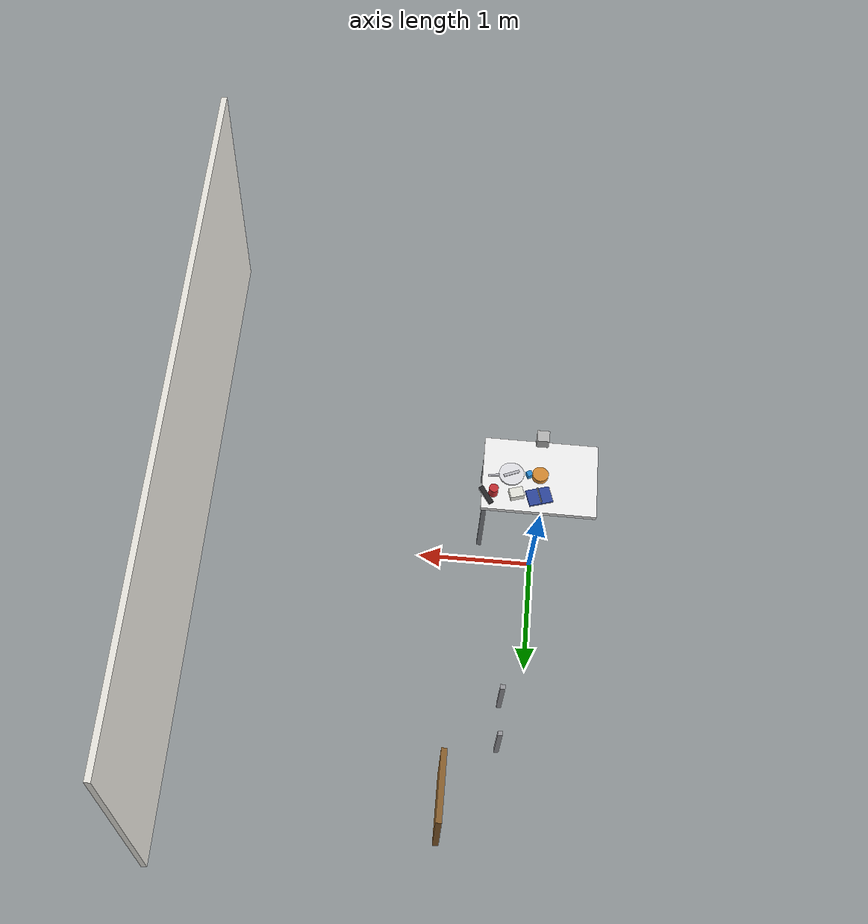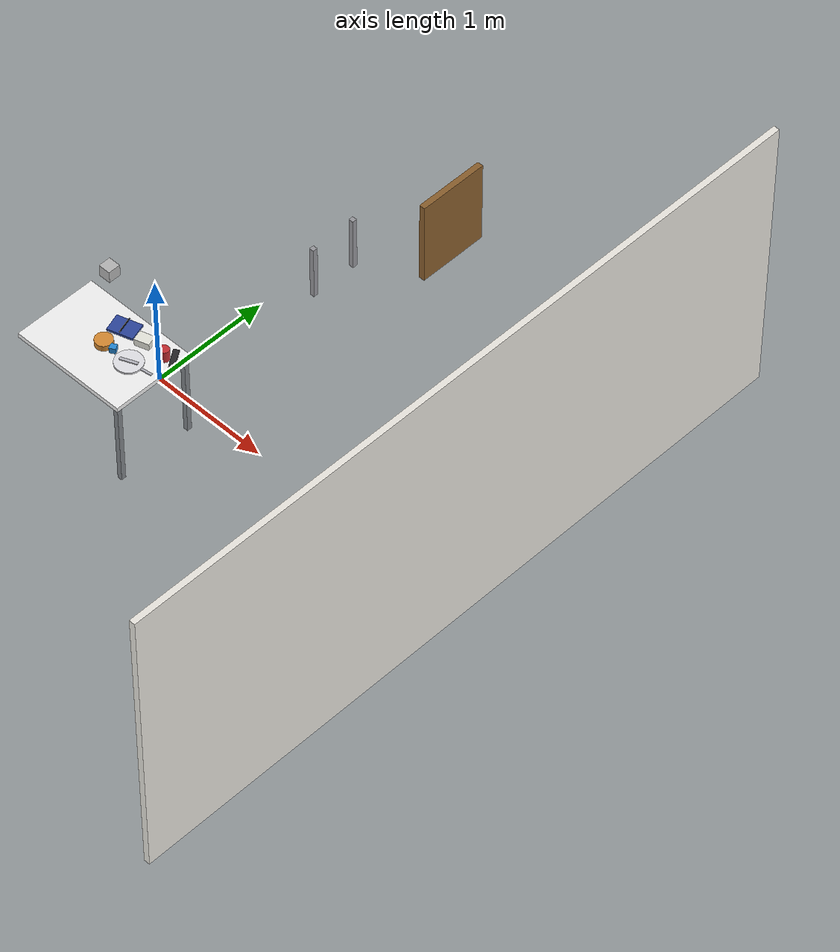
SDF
<sdf version="1.10">
 <world name="bps_room">
  <model name="wall_east">
   <static>true</static>
   <pose>3 0 1.25 0 0 0</pose>
   <link name="link">
    <collision name="collision"><geometry><box><size>0.05 6 2.5</size></box></geometry></collision>
    <visual name="visual">
     <geometry><box><size>0.05 6 2.5</size></box></geometry>
     <material><ambient>0.93 0.92 0.89 1</ambient><diffuse>0.93 0.92 0.89 1</diffuse></material>
    </visual>
   </link>
  </model>
  <model name="desk_leg_right">
   <static>true</static>
   <pose>0.65 2.3 0.375 0 0 0</pose>
   <link name="link">
    <collision name="collision"><geometry><box><size>0.05 0.6 0.75</size></box></geometry></collision>
    <visual name="visual">
     <geometry><box><size>0.05 0.6 0.75</size></box></geometry>
     <material><ambient>0.55 0.38 0.18 1</ambient><diffuse>0.55 0.38 0.18 1</diffuse></material>
    </visual>
   </link>
  </model>
  <model name="chair_leg_fr">
   <static>true</static>
   <pose>0.2 1.35 0.24 0 0 0</pose>
   <link name="link">
    <collision name="collision"><geometry><box><size>0.04 0.04 0.48</size></box></geometry></collision>
    <visual name="visual">
     <geometry><box><size>0.04 0.04 0.48</size></box></geometry>
     <material><ambient>0.60 0.60 0.62 1</ambient><diffuse>0.60 0.60 0.62 1</diffuse></material>
    </visual>
   </link>
  </model>
  <model name="chair_leg_br">
   <static>true</static>
   <pose>0.2 1.75 0.24 0 0 0</pose>
   <link name="link">
    <collision name="collision"><geometry><box><size>0.04 0.04 0.48</size></box></geometry></collision>
    <visual name="visual">
     <geometry><box><size>0.04 0.04 0.48</size></box></geometry>
     <material><ambient>0.60 0.60 0.62 1</ambient><diffuse>0.60 0.60 0.62 1</diffuse></material>
    </visual>
   </link>
  </model>
  <model name="experiment_table">
   <static>true</static>
   <pose>0 -0.5 0.75 0 0 0</pose>
   <link name="link">
    <collision name="collision"><geometry><box><size>1.0 0.7 0.04</size></box></geometry></collision>
    <visual name="visual">
     <geometry><box><size>1.0 0.7 0.04</size></box></geometry>
     <material><ambient>0.96 0.96 0.96 1</ambient><diffuse>0.96 0.96 0.96 1</diffuse></material>
    </visual>
   </link>
  </model>
  <model name="table_leg_fr">
   <static>true</static>
   <pose>0.47 -0.82 0.375 0 0 0</pose>
   <link name="link">
    <collision name="collision"><geometry><box><size>0.04 0.04 0.75</size></box></geometry></collision>
    <visual name="visual">
     <geometry><box><size>0.04 0.04 0.75</size></box></geometry>
     <material><ambient>0.50 0.52 0.54 1</ambient><diffuse>0.50 0.52 0.54 1</diffuse></material>
    </visual>
   </link>
  </model>
  <model name="table_leg_br">
   <static>true</static>
   <pose>0.47 -0.18 0.375 0 0 0</pose>
   <link name="link">
    <collision name="collision"><geometry><box><size>0.04 0.04 0.75</size></box></geometry></collision>
    <visual name="visual">
     <geometry><box><size>0.04 0.04 0.75</size></box></geometry>
     <material><ambient>0.50 0.52 0.54 1</ambient><diffuse>0.50 0.52 0.54 1</diffuse></material>
    </visual>
   </link>
  </model>
  <model name="obj_notebook">
   <static>true</static>
   <pose>0.00 -0.30 0.78 0 0 0.3</pose>
   <link name="link">
    <collision name="collision"><geometry><box><size>0.21 0.15 0.02</size></box></geometry></collision>
    <visual name="visual">
     <geometry><box><size>0.21 0.15 0.02</size></box></geometry>
     <material>
      <ambient>0.18 0.28 0.62 1</ambient>
      <diffuse>0.18 0.28 0.62 1</diffuse>
      <specular>0.2 0.2 0.2 1</specular>
     </material>
     <plugin filename="gz-sim-label-system" name="gz::sim::systems::Label"><label>3</label></plugin>
    </visual>
   </link>
  </model>
  <model name="obj_pen">
   <static>true</static>
   <pose>0.00 -0.30 0.807 1.5708 0 0.3</pose>
   <link name="link">
    <collision name="collision">
     <geometry><cylinder><radius>0.006</radius><length>0.14</length></cylinder></geometry>
    </collision>
    <visual name="visual">
     <geometry><cylinder><radius>0.006</radius><length>0.14</length></cylinder></geometry>
     <material>
      <ambient>0.05 0.05 0.05 1</ambient>
      <diffuse>0.05 0.05 0.05 1</diffuse>
      <specular>0.6 0.6 0.6 1</specular>
     </material>
     <plugin filename="gz-sim-label-system" name="gz::sim::systems::Label"><label>4</label></plugin>
    </visual>
   </link>
  </model>
  <model name="obj_tissue_box">
   <static>true</static>
   <pose>0.20 -0.30 0.80 0 0 0.3</pose>
   <link name="link">
    <collision name="collision"><geometry><box><size>0.12 0.09 0.06</size></box></geometry></collision>
    <visual name="visual">
     <geometry><box><size>0.12 0.09 0.06</size></box></geometry>
     <material>
      <ambient>0.92 0.92 0.88 1</ambient>
      <diffuse>0.92 0.92 0.88 1</diffuse>
      <specular>0.2 0.2 0.2 1</specular>
     </material>
     <plugin filename="gz-sim-label-system" name="gz::sim::systems::Label"><label>5</label></plugin>
    </visual>
   </link>
  </model>
  <model name="obj_mug">
   <static>true</static>
   <pose>0.40 -0.30 0.82 0 0 0</pose>
   <link name="link">
    <collision name="collision">
     <geometry><cylinder><radius>0.04</radius><length>0.10</length></cylinder></geometry>
    </collision>
    <visual name="visual">
     <geometry><cylinder><radius>0.04</radius><length>0.10</length></cylinder></geometry>
     <material>
      <ambient>0.78 0.18 0.20 1</ambient>
      <diffuse>0.78 0.18 0.20 1</diffuse>
      <specular>0.3 0.3 0.3 1</specular>
     </material>
     <plugin filename="gz-sim-label-system" name="gz::sim::systems::Label"><label>6</label></plugin>
    </visual>
   </link>
  </model>
  <model name="obj_remote">
   <static>true</static>
   <pose>0.46 -0.27 0.78 0 0 0.6</pose>
   <link name="link">
    <collision name="collision"><geometry><box><size>0.045 0.18 0.02</size></box></geometry></collision>
    <visual name="visual">
     <geometry><box><size>0.045 0.18 0.02</size></box></geometry>
     <material>
      <ambient>0.15 0.15 0.16 1</ambient>
      <diffuse>0.15 0.15 0.16 1</diffuse>
      <specular>0.2 0.2 0.2 1</specular>
     </material>
     <plugin filename="gz-sim-label-system" name="gz::sim::systems::Label"><label>7</label></plugin>
    </visual>
   </link>
  </model>
  <model name="obj_bowl">
   <static>true</static>
   <pose>0.00 -0.50 0.795 0 0 0</pose>
   <link name="link">
    <collision name="collision">
     <geometry><cylinder><radius>0.07</radius><length>0.05</length></cylinder></geometry>
    </collision>
    <visual name="visual">
     <geometry><cylinder><radius>0.07</radius><length>0.05</length></cylinder></geometry>
     <material>
      <ambient>0.85 0.55 0.20 1</ambient>
      <diffuse>0.85 0.55 0.20 1</diffuse>
      <specular>0.3 0.3 0.3 1</specular>
     </material>
     <plugin filename="gz-sim-label-system" name="gz::sim::systems::Label"><label>10</label></plugin>
    </visual>
   </link>
  </model>
  <model name="obj_toy_block">
   <static>true</static>
   <pose>0.095 -0.50 0.795 0 0 0.5</pose>
   <link name="link">
    <collision name="collision"><geometry><box><size>0.05 0.05 0.05</size></box></geometry></collision>
    <visual name="visual">
     <geometry><box><size>0.05 0.05 0.05</size></box></geometry>
     <material>
      <ambient>0.15 0.55 0.85 1</ambient>
      <diffuse>0.15 0.55 0.85 1</diffuse>
      <specular>0.3 0.3 0.3 1</specular>
     </material>
     <plugin filename="gz-sim-label-system" name="gz::sim::systems::Label"><label>11</label></plugin>
    </visual>
   </link>
  </model>
  <model name="obj_plate">
   <static>true</static>
   <pose>0.25 -0.50 0.7775 0 0 0</pose>
   <link name="link">
    <collision name="collision">
     <geometry><cylinder><radius>0.11</radius><length>0.015</length></cylinder></geometry>
    </collision>
    <visual name="visual">
     <geometry><cylinder><radius>0.11</radius><length>0.015</length></cylinder></geometry>
     <material>
      <ambient>0.90 0.90 0.92 1</ambient>
      <diffuse>0.90 0.90 0.92 1</diffuse>
      <specular>0.3 0.3 0.3 1</specular>
     </material>
     <plugin filename="gz-sim-label-system" name="gz::sim::systems::Label"><label>12</label></plugin>
    </visual>
   </link>
  </model>
  <model name="obj_spoon">
   <static>true</static>
   <pose>0.25 -0.50 0.789 0 0 0.4</pose>
   <link name="link">
    <collision name="collision"><geometry><box><size>0.14 0.025 0.008</size></box></geometry></collision>
    <visual name="visual">
     <geometry><box><size>0.14 0.025 0.008</size></box></geometry>
     <material>
      <ambient>0.72 0.72 0.75 1</ambient>
      <diffuse>0.72 0.72 0.75 1</diffuse>
      <specular>0.7 0.7 0.7 1</specular>
     </material>
     <plugin filename="gz-sim-label-system" name="gz::sim::systems::Label"><label>13</label></plugin>
    </visual>
   </link>
  </model>
  <model name="obj_fork">
   <static>true</static>
   <pose>0.38 -0.48 0.774 0 0 0.15</pose>
   <link name="link">
    <collision name="collision"><geometry><box><size>0.14 0.02 0.008</size></box></geometry></collision>
    <visual name="visual">
     <geometry><box><size>0.14 0.02 0.008</size></box></geometry>
     <material>
      <ambient>0.72 0.72 0.75 1</ambient>
      <diffuse>0.72 0.72 0.75 1</diffuse>
      <specular>0.7 0.7 0.7 1</specular>
     </material>
     <plugin filename="gz-sim-label-system" name="gz::sim::systems::Label"><label>14</label></plugin>
    </visual>
   </link>
  </model>
  <model name="depth_camera">
   <static>true</static>
   <pose>0 -0.5 1.57 0 1.5708 0</pose>
   <link name="link">
    <pose>0.05 0.05 0.05 0 0 0</pose>
    <inertial>
     <mass>0.1</mass>
     <inertia>
      <ixx>0.000166667</ixx>
      <iyy>0.000166667</iyy>
      <izz>0.000166667</izz>
      <ixy>0</ixy>
      <ixz>0</ixz>
      <iyz>0</iyz>
     </inertia>
    </inertial>
    <collision name="collision"><geometry><box><size>0.1 0.1 0.1</size></box></geometry></collision>
    <visual name="visual"><geometry><box><size>0.1 0.1 0.1</size></box></geometry></visual>
    <sensor name="depth_camera1" type="depth_camera">
     <topic>depth_camera</topic>
     <update_rate>10</update_rate>
     <enable_metrics>false</enable_metrics>
     <camera>
      <horizontal_fov>1.2</horizontal_fov>
      <image>
       <width>640</width>
       <height>480</height>
       <format>R_FLOAT32</format>
       <anti_aliasing>4</anti_aliasing>
      </image>
      <camera_info_topic>__default__</camera_info_topic>
      <triggered>false</triggered>
      <clip><near>0.1</near><far>2</far></clip>
      <save enabled="false"><path>__default__</path></save>
      <visibility_mask>4294967295</visibility_mask>
      <noise><type>none</type><mean>0</mean><stddev>0</stddev></noise>
      <distortion><k1>0</k1><k2>0</k2><k3>0</k3><p1>0</p1><p2>0</p2><center>0.5 0.5</center></distortion>
      <lens>
       <type>stereographic</type>
       <scale_to_hfov>true</scale_to_hfov>
       <cutoff_angle>1.5707963267948966</cutoff_angle>
       <env_texture_size>256</env_texture_size>
      </lens>
     </camera>
    </sensor>
    <sensor name="rgb_camera" type="camera">
     <topic>rgb_camera</topic>
     <update_rate>10</update_rate>
     <enable_metrics>false</enable_metrics>
     <camera>
      <horizontal_fov>1.2</horizontal_fov>
      <image><width>640</width><height>480</height><format>RGB_INT8</format><anti_aliasing>4</anti_aliasing></image>
      <camera_info_topic>__default__</camera_info_topic>
      <triggered>false</triggered>
      <clip><near>0.1</near><far>2</far></clip>
      <save enabled="false"><path>__default__</path></save>
      <visibility_mask>4294967295</visibility_mask>
      <noise><type>none</type><mean>0</mean><stddev>0</stddev></noise>
      <distortion><k1>0</k1><k2>0</k2><k3>0</k3><p1>0</p1><p2>0</p2><center>0.5 0.5</center></distortion>
      <lens>
       <type>stereographic</type>
       <scale_to_hfov>true</scale_to_hfov>
       <cutoff_angle>1.5707963267948966</cutoff_angle>
       <env_texture_size>256</env_texture_size>
      </lens>
     </camera>
    </sensor>
    <sensor name="semantic_camera" type="segmentation">
     <topic>semantic_camera</topic>
     <always_on>true</always_on>
     <update_rate>10</update_rate>
     <camera>
      <segmentation_type>semantic</segmentation_type>
      <horizontal_fov>1.2</horizontal_fov>
      <image><width>640</width><height>480</height><format>RGB_INT8</format><anti_aliasing>4</anti_aliasing></image>
      <clip><near>0.1</near><far>2.0</far></clip>
     </camera>
    </sensor>
   </link>
  </model>
 </world>
</sdf>
